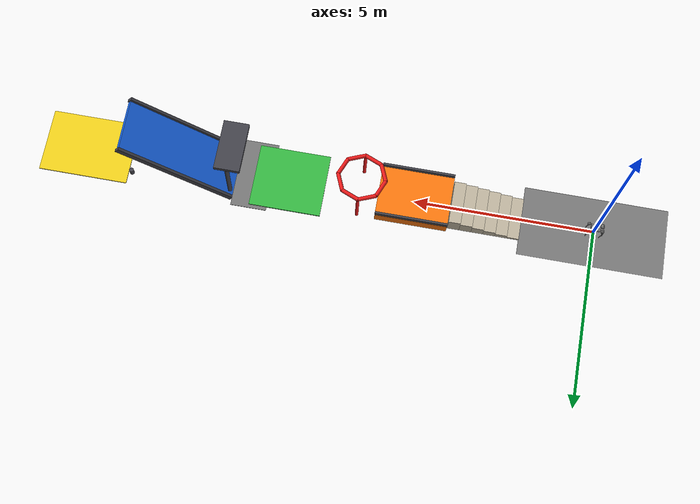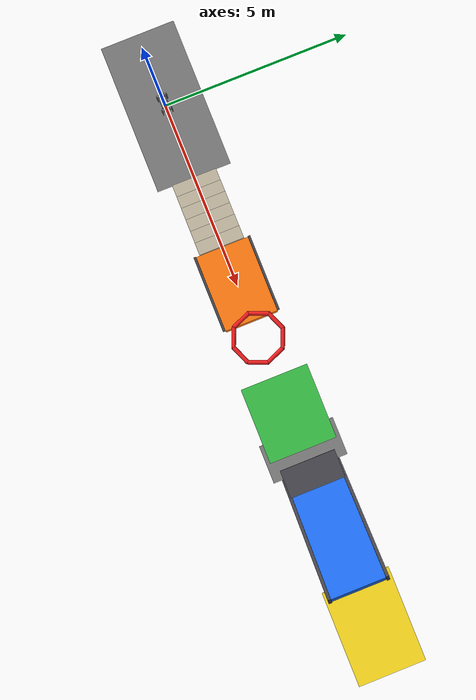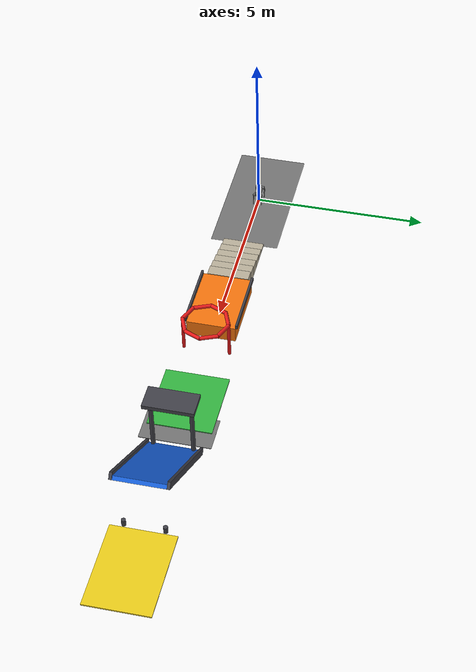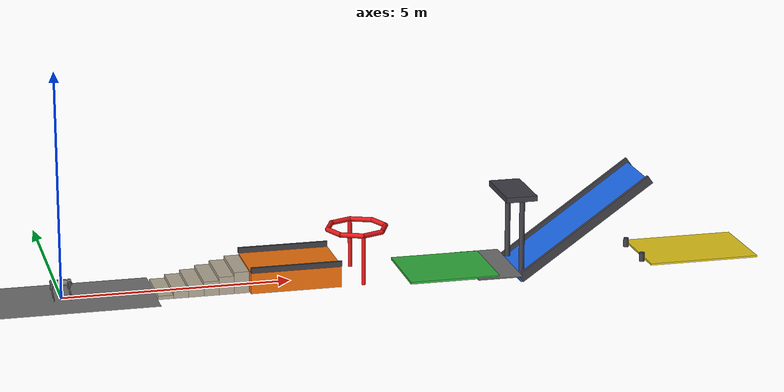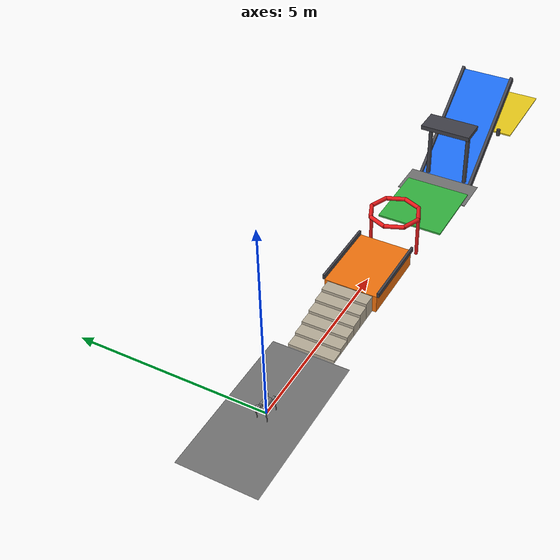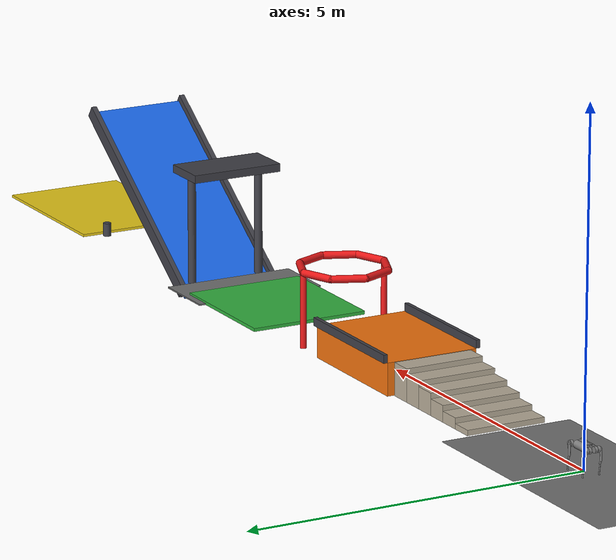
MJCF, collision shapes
<?xml version="1.0" encoding="utf-8"?>
<mujoco model="go1_obstacle_course">
  <compiler angle="radian" meshdir="go1" autolimits="true"/>
  <option timestep="0.002" gravity="0 0 -9.81" iterations="50" solver="Newton"
          cone="elliptic" impratio="10"/>

  <visual>
    <headlight ambient="0.5 0.5 0.5" diffuse="0.8 0.8 0.8" specular="0.1 0.1 0.1"/>
    <map force="0.1" zfar="200"/>
    <quality shadowsize="4096"/>
    <global offwidth="1280" offheight="720"/>
  </visual>

  <asset>
    <texture type="skybox" builtin="gradient" rgb1="0.3 0.5 0.8" rgb2="0.02 0.02 0.15"
             width="200" height="200"/>

    <!-- Floor checker -->
    <texture name="floor_tex" type="2d" builtin="checker"
             rgb1="0.55 0.55 0.55" rgb2="0.35 0.35 0.35" width="512" height="512"/>
    <material name="floor_mat" texture="floor_tex" texrepeat="6 6"
              specular="0.4" shininess="0.3" reflectance="0.05"/>

    <!-- Stair / concrete material -->
    <texture name="stair_tex" type="2d" builtin="flat"
             rgb1="0.72 0.68 0.60" width="64" height="64"/>
    <material name="stair_mat" texture="stair_tex" specular="0.3" shininess="0.2"/>

    <!-- Ring platform material (orange) -->
    <texture name="ring_tex" type="2d" builtin="flat"
             rgb1="0.95 0.45 0.05" width="64" height="64"/>
    <material name="ring_mat" texture="ring_tex" specular="0.6" shininess="0.5"/>

    <!-- Jump-through hoop material (vivid red) -->
    <texture name="hoop_tex" type="2d" builtin="flat"
             rgb1="0.90 0.10 0.10" width="64" height="64"/>
    <material name="hoop_mat" texture="hoop_tex" specular="0.8" shininess="0.7"/>

    <!-- Landing pad (green) -->
    <texture name="land_tex" type="2d" builtin="flat"
             rgb1="0.20 0.70 0.25" width="64" height="64"/>
    <material name="land_mat" texture="land_tex" specular="0.2" shininess="0.1"/>

    <!-- Slide surface — vivid blue, very slippery -->
    <texture name="slide_tex" type="2d" builtin="flat"
             rgb1="0.10 0.40 0.90" width="64" height="64"/>
    <material name="slide_mat" texture="slide_tex" specular="0.9" shininess="0.9"
              reflectance="0.3"/>

    <!-- Slide support / side-rail material (dark grey) -->
    <texture name="support_tex" type="2d" builtin="flat"
             rgb1="0.25 0.25 0.28" width="64" height="64"/>
    <material name="support_mat" texture="support_tex" specular="0.4" shininess="0.3"/>

    <!-- Run-out pad (yellow) -->
    <texture name="runout_tex" type="2d" builtin="flat"
             rgb1="0.92 0.80 0.10" width="64" height="64"/>
    <material name="runout_mat" texture="runout_tex" specular="0.2" shininess="0.1"/>

    <!-- Robot meshes -->
    <mesh file="trunk.stl"/>
    <mesh file="hip.stl"/>
    <mesh file="thigh_mirror.stl"/>
    <mesh file="calf.stl"/>
    <mesh file="thigh.stl"/>
  </asset>

  <default>
    <default class="go1">
      <geom friction="1.0 0.01 0.005" margin="0.001" condim="3"/>
      <joint axis="0 1 0" damping="2" armature="0.01" frictionloss="0.2"/>
      <default class="abduction">
        <joint axis="1 0 0" damping="1" range="-0.863 0.863"/>
      </default>
      <default class="hip">
        <joint range="-0.686 4.501"/>
      </default>
      <default class="knee">
        <joint range="-2.818 -0.888"/>
      </default>
      <default class="visual">
        <geom type="mesh" contype="0" conaffinity="0" group="2"/>
      </default>
      <default class="collision">
        <geom group="3" type="capsule"/>
        <default class="hip_left1">
          <geom size="0.046 0.02" pos="0 0.045 0" quat="1 1 0 0" type="cylinder"/>
        </default>
        <default class="hip_left2">
          <geom size="0.031 0.02" pos="0 0.065 0" quat="1 1 0 0" type="cylinder"/>
        </default>
        <default class="hip_left3">
          <geom size="0.046 0.02" quat="1 1 0 0" type="cylinder"/>
        </default>
        <default class="hip_right1">
          <geom size="0.046 0.02" pos="0 -0.045 0" quat="1 1 0 0" type="cylinder"/>
        </default>
        <default class="hip_right2">
          <geom size="0.031 0.02" pos="0 -0.065 0" quat="1 1 0 0" type="cylinder"/>
        </default>
        <default class="hip_right3">
          <geom size="0.046 0.02" quat="1 1 0 0" type="cylinder"/>
        </default>
        <default class="thigh1">
          <geom size="0.015" fromto="-0.02 0 0 -0.02 0 -0.16"/>
        </default>
        <default class="thigh2">
          <geom size="0.015" fromto="0 0 0 -0.02 0 -0.1"/>
        </default>
        <default class="thigh3">
          <geom size="0.015" fromto="-0.02 0 -0.16 0 0 -0.2"/>
        </default>
        <default class="calf1">
          <geom size="0.01" fromto="0 0 0 0.02 0 -0.13"/>
        </default>
        <default class="calf2">
          <geom size="0.01" fromto="0.02 0 -0.13 0 0 -0.2"/>
        </default>
        <default class="foot">
          <geom type="sphere" size="0.023" pos="0 0 -0.213" priority="1"
                solimp="0.015 1 0.023" condim="6" friction="1.0 0.02 0.01"/>
        </default>
      </default>
    </default>
    <motor ctrllimited="true" ctrlrange="-33.5 33.5"/>
  </default>

  <worldbody>
    <!-- ── Lighting ── -->
    <light name="sun"    pos="5 0 10" dir="0 0 -1" directional="true"
           diffuse="0.9 0.9 0.9" specular="0.3 0.3 0.3" castshadow="true"/>
    <light name="fill1"  pos="5 -4 5"  dir="-0.5 0.5 -1" diffuse="0.3 0.3 0.4"/>
    <light name="fill2"  pos="5  4 5"  dir="-0.5 -0.5 -1" diffuse="0.25 0.25 0.35"/>
    <!-- Hoop accent light -->
    <light name="hoop_l" pos="6.5 0 3" dir="0 0 -1" diffuse="0.8 0.2 0.2"
           attenuation="0 0 0.5"/>
    <!-- Slide accent light -->
    <light name="slide_l" pos="11.5 0 5" dir="0 0 -1" diffuse="0.2 0.4 0.9"
           attenuation="0 0 0.3"/>
    <light name="spot"  mode="targetbodycom" target="trunk" pos="0 -2 3"
           diffuse="0.6 0.6 0.6" specular="0.2 0.2 0.2"/>

    <!-- ══ ZONE 1: Flat ground (x: -2 → 2) ══ -->
    <geom name="ground" type="plane" size="2 1 0.1" pos="0 0 0"
          material="floor_mat" condim="3" friction="1.0 0.01 0.005"/>

    <!-- ══ ZONE 2: Staircase (x: 2 → 4, 6 steps, 8cm rise, 33cm run) ══ -->
    <!-- Step 1: z=0.08 -->
    <geom name="step1" type="box" size="0.165 0.6 0.04"  pos="2.165 0 0.04"
          material="stair_mat" condim="3" friction="1.0 0.01 0.005"/>
    <!-- Step 2: z=0.16 -->
    <geom name="step2" type="box" size="0.165 0.6 0.08"  pos="2.495 0 0.08"
          material="stair_mat" condim="3" friction="1.0 0.01 0.005"/>
    <!-- Step 3: z=0.24 -->
    <geom name="step3" type="box" size="0.165 0.6 0.12"  pos="2.825 0 0.12"
          material="stair_mat" condim="3" friction="1.0 0.01 0.005"/>
    <!-- Step 4: z=0.32 -->
    <geom name="step4" type="box" size="0.165 0.6 0.16"  pos="3.155 0 0.16"
          material="stair_mat" condim="3" friction="1.0 0.01 0.005"/>
    <!-- Step 5: z=0.40 -->
    <geom name="step5" type="box" size="0.165 0.6 0.20"  pos="3.485 0 0.20"
          material="stair_mat" condim="3" friction="1.0 0.01 0.005"/>
    <!-- Step 6 / top platform connecting to ring (z=0.48) -->
    <geom name="step6" type="box" size="0.165 0.6 0.24"  pos="3.815 0 0.24"
          material="stair_mat" condim="3" friction="1.0 0.01 0.005"/>

    <!-- ══ ZONE 3: Raised Platform (x: 4 → 6, top at z=0.48) ══ -->
    <geom name="ring_platform" type="box" size="1.0 0.7 0.24" pos="5.0 0 0.24"
          material="ring_mat" condim="3" friction="0.9 0.01 0.005"/>
    <!-- Low guard walls (visual only) -->
    <geom name="plat_rail_l" type="box" size="1.0 0.03 0.06" pos="5.0  0.73 0.54"
          material="support_mat" contype="0" conaffinity="0"/>
    <geom name="plat_rail_r" type="box" size="1.0 0.03 0.06" pos="5.0 -0.73 0.54"
          material="support_mat" contype="0" conaffinity="0"/>

    <!-- Left post -->
    <geom name="hoop_post_l" type="cylinder" size="0.045 0.55"
          pos="6.5  0.65 0.55" material="hoop_mat"
          condim="3" friction="0.8 0.01 0.005"/>
    <!-- Right post -->
    <geom name="hoop_post_r" type="cylinder" size="0.045 0.55"
          pos="6.5 -0.65 0.55" material="hoop_mat"
          condim="3" friction="0.8 0.01 0.005"/>
    <!-- Seg 0: 0°→45° -->
    <geom name="hoop_s0" type="capsule" size="0.055"
          fromto="7.15  0.00 1.10   6.96  0.46 1.10"
          material="hoop_mat" contype="0" conaffinity="0"/>
    <!-- Seg 1: 45°→90° -->
    <geom name="hoop_s1" type="capsule" size="0.055"
          fromto="6.96  0.46 1.10   6.50  0.65 1.10"
          material="hoop_mat" contype="0" conaffinity="0"/>
    <!-- Seg 2: 90°→135° -->
    <geom name="hoop_s2" type="capsule" size="0.055"
          fromto="6.50  0.65 1.10   6.04  0.46 1.10"
          material="hoop_mat" contype="0" conaffinity="0"/>
    <!-- Seg 3: 135°→180° -->
    <geom name="hoop_s3" type="capsule" size="0.055"
          fromto="6.04  0.46 1.10   5.85  0.00 1.10"
          material="hoop_mat" contype="0" conaffinity="0"/>
    <!-- Seg 4: 180°→225° -->
    <geom name="hoop_s4" type="capsule" size="0.055"
          fromto="5.85  0.00 1.10   6.04 -0.46 1.10"
          material="hoop_mat" contype="0" conaffinity="0"/>
    <!-- Seg 5: 225°→270° -->
    <geom name="hoop_s5" type="capsule" size="0.055"
          fromto="6.04 -0.46 1.10   6.50 -0.65 1.10"
          material="hoop_mat" contype="0" conaffinity="0"/>
    <!-- Seg 6: 270°→315° -->
    <geom name="hoop_s6" type="capsule" size="0.055"
          fromto="6.50 -0.65 1.10   6.96 -0.46 1.10"
          material="hoop_mat" contype="0" conaffinity="0"/>
    <!-- Seg 7: 315°→360° -->
    <geom name="hoop_s7" type="capsule" size="0.055"
          fromto="6.96 -0.46 1.10   7.15  0.00 1.10"
          material="hoop_mat" contype="0" conaffinity="0"/>

    <!-- ══ ZONE 5: Landing Pad (x: 7.5 → 9.5, z=0) ══ -->
    <geom name="landing_pad" type="box" size="1.0 0.9 0.025" pos="8.5 0 0.025"
          material="land_mat" condim="3" friction="1.2 0.01 0.005"/>
    <!-- Connecting flat ground between hoop and slide -->
    <geom name="mid_ground" type="box" size="0.5 1.0 0.01" pos="9.5 0 0.01"
          material="floor_mat" condim="3" friction="1.0 0.01 0.005"/>

    <!-- Ramp surface -->
    <geom name="slide_ramp" type="box" size="1.80 0.70 0.06"
          pos="11.50 0 0.86"
          euler="0 -0.6109 0"
          material="slide_mat"
          condim="3" friction="0.05 0.002 0.001"/>
    <!-- Left guard rail on slide -->
    <geom name="slide_rail_l" type="box" size="1.80 0.04 0.10"
          pos="11.50  0.74 0.92"
          euler="0 -0.6109 0"
          material="support_mat" contype="0" conaffinity="0"/>
    <!-- Right guard rail on slide -->
    <geom name="slide_rail_r" type="box" size="1.80 0.04 0.10"
          pos="11.50 -0.74 0.92"
          euler="0 -0.6109 0"
          material="support_mat" contype="0" conaffinity="0"/>
    <!-- Support leg left (front) -->
    <geom name="slide_leg_lf" type="cylinder" size="0.06 0.86"
          pos="10.10  0.55 0.86" material="support_mat"
          condim="3" friction="0.8 0.01 0.005"/>
    <!-- Support leg right (front) -->
    <geom name="slide_leg_rf" type="cylinder" size="0.06 0.86"
          pos="10.10 -0.55 0.86" material="support_mat"
          condim="3" friction="0.8 0.01 0.005"/>
    <!-- Support leg left (back) -->
    <geom name="slide_leg_lb" type="cylinder" size="0.06 0.10"
          pos="12.90  0.55 0.10" material="support_mat"
          condim="3" friction="0.8 0.01 0.005"/>
    <!-- Support leg right (back) -->
    <geom name="slide_leg_rb" type="cylinder" size="0.06 0.10"
          pos="12.90 -0.55 0.10" material="support_mat"
          condim="3" friction="0.8 0.01 0.005"/>
    <!-- Slide entry platform at the top -->
    <geom name="slide_top_plat" type="box" size="0.35 0.70 0.06"
          pos="10.05 0 1.68" material="support_mat"
          condim="3" friction="0.9 0.01 0.005"/>

    <!-- ══ ZONE 7: Run-out zone after slide (x: 13 → 15.5) ══ -->
    <geom name="runout_pad" type="box" size="1.25 0.90 0.02" pos="14.25 0 0.02"
          material="runout_mat" condim="3" friction="1.0 0.01 0.005"/>

    <!-- ══ ROBOT ══ -->
    <body name="trunk" pos="0 0 0.35" childclass="go1">
      <!-- Cameras -->
      <camera name="tracking"  mode="trackcom"  pos="0 -2.0 1.2" xyaxes="1 0 0 0 0.5 1"/>
      <camera name="side_view" mode="trackcom"  pos="-3 -3 2"    xyaxes="0.7 0.7 0 -0.3 0.3 1"/>
      <camera name="top_view"  mode="trackcom"  pos="0 0 5"      xyaxes="1 0 0 0 1 0"/>
      <camera name="front_cam" mode="trackcom"  pos="0 -1.5 0.6" xyaxes="1 0 0 0 0.2 1"/>

      <site name="imu_site" pos="0 0 0" size="0.01"/>
      <site name="head"     pos="0.3 0 0" rgba="1 0 0 1" size="0.02" group="5"/>

      <inertial pos="0.0223 0.002 -0.0005"
                quat="-0.00342088 0.705204 0.000106698 0.708996"
                mass="5.204" diaginertia="0.0716565 0.0630105 0.0168101"/>
      <freejoint name="root"/>
      <geom class="visual" mesh="trunk"/>
      <geom class="collision" size="0.125 0.04 0.057" type="box"/>
      <geom class="collision" quat="1 0 1 0" pos="0 -0.04 0" size="0.058 0.125" type="cylinder"/>
      <geom class="collision" quat="1 0 1 0" pos="0  0.04 0" size="0.058 0.125" type="cylinder"/>

      <!-- FR leg -->
      <body name="FR_hip" pos="0.1881 -0.04675 0">
        <inertial pos="-0.0049166 0.00762615 -8.865e-05"
                  quat="0.507341 0.514169 0.495027 0.482891" mass="0.68"
                  diaginertia="0.000734064 0.000468438 0.000398719"/>
        <joint class="abduction" name="FR_hip_joint"/>
        <geom class="visual" mesh="hip" quat="1 0 0 0"/>
        <geom class="hip_right1"/>
        <geom class="hip_right2"/>
        <body name="FR_thigh" pos="0 -0.08 0">
          <inertial pos="-0.00304722 0.019315 -0.0305004"
                    quat="0.65243 -0.0272313 0.0775126 0.753383" mass="1.009"
                    diaginertia="0.00478717 0.00460903 0.000709268"/>
          <joint class="hip" name="FR_thigh_joint"/>
          <geom class="visual" mesh="thigh_mirror"/>
          <geom class="thigh1"/>
          <geom class="thigh2"/>
          <geom class="thigh3"/>
          <body name="FR_calf" pos="0 0 -0.213">
            <inertial pos="0.00429862 0.000976676 -0.146197"
                      quat="0.691246 0.00357467 0.00511118 0.722592"
                      mass="0.195862" diaginertia="0.00149767 0.00148468 3.58427e-05"/>
            <joint class="knee" name="FR_calf_joint"/>
            <geom class="visual" mesh="calf"/>
            <geom class="calf1"/>
            <geom class="calf2"/>
            <geom name="FR" class="foot"/>
            <site name="FR_foot_site" pos="0 0 -0.213" type="sphere" size="0.023" group="5"/>
          </body>
        </body>
      </body>

      <!-- FL leg -->
      <body name="FL_hip" pos="0.1881 0.04675 0">
        <inertial pos="-0.0049166 -0.00762615 -8.865e-05"
                  quat="0.482891 0.495027 0.514169 0.507341" mass="0.68"
                  diaginertia="0.000734064 0.000468438 0.000398719"/>
        <joint class="abduction" name="FL_hip_joint"/>
        <geom class="visual" mesh="hip"/>
        <geom class="hip_left1"/>
        <geom class="hip_left2"/>
        <body name="FL_thigh" pos="0 0.08 0">
          <inertial pos="-0.00304722 -0.019315 -0.0305004"
                    quat="0.753383 0.0775126 -0.0272313 0.65243" mass="1.009"
                    diaginertia="0.00478717 0.00460903 0.000709268"/>
          <joint class="hip" name="FL_thigh_joint"/>
          <geom class="visual" mesh="thigh"/>
          <geom class="thigh1"/>
          <geom class="thigh2"/>
          <geom class="thigh3"/>
          <body name="FL_calf" pos="0 0 -0.213">
            <inertial pos="0.00429862 0.000976676 -0.146197"
                      quat="0.691246 0.00357467 0.00511118 0.722592"
                      mass="0.195862" diaginertia="0.00149767 0.00148468 3.58427e-05"/>
            <joint class="knee" name="FL_calf_joint"/>
            <geom class="visual" mesh="calf"/>
            <geom class="calf1"/>
            <geom class="calf2"/>
            <geom name="FL" class="foot"/>
            <site name="FL_foot_site" pos="0 0 -0.213" type="sphere" size="0.023" group="5"/>
          </body>
        </body>
      </body>

      <!-- RR leg -->
      <body name="RR_hip" pos="-0.1881 -0.04675 0">
        <inertial pos="0.0049166 0.00762615 -8.865e-05"
                  quat="0.495027 0.482891 0.507341 0.514169" mass="0.68"
                  diaginertia="0.000734064 0.000468438 0.000398719"/>
        <joint class="abduction" name="RR_hip_joint"/>
        <geom class="visual" quat="0 0 0 -1" mesh="hip"/>
        <geom class="hip_right1"/>
        <geom class="hip_right2"/>
        <geom class="hip_right3"/>
        <body name="RR_thigh" pos="0 -0.08 0">
          <inertial pos="-0.00304722 0.019315 -0.0305004"
                    quat="0.65243 -0.0272313 0.0775126 0.753383" mass="1.009"
                    diaginertia="0.00478717 0.00460903 0.000709268"/>
          <joint class="hip" name="RR_thigh_joint"/>
          <geom class="visual" mesh="thigh_mirror"/>
          <geom class="thigh1"/>
          <geom class="thigh2"/>
          <geom class="thigh3"/>
          <body name="RR_calf" pos="0 0 -0.213">
            <inertial pos="0.00429862 0.000976676 -0.146197"
                      quat="0.691246 0.00357467 0.00511118 0.722592"
                      mass="0.195862" diaginertia="0.00149767 0.00148468 3.58427e-05"/>
            <joint class="knee" name="RR_calf_joint"/>
            <geom class="visual" mesh="calf"/>
            <geom class="calf1"/>
            <geom class="calf2"/>
            <geom name="RR" class="foot"/>
            <site name="RR_foot_site" pos="0 0 -0.213" type="sphere" size="0.023" group="5"/>
          </body>
        </body>
      </body>

      <!-- RL leg -->
      <body name="RL_hip" pos="-0.1881 0.04675 0">
        <inertial pos="0.0049166 -0.00762615 -8.865e-05"
                  quat="0.514169 0.507341 0.482891 0.495027" mass="0.68"
                  diaginertia="0.000734064 0.000468438 0.000398719"/>
        <joint class="abduction" name="RL_hip_joint"/>
        <geom class="visual" quat="0 0 1 0" mesh="hip"/>
        <geom class="hip_left1"/>
        <geom class="hip_left2"/>
        <geom class="hip_left3"/>
        <body name="RL_thigh" pos="0 0.08 0">
          <inertial pos="-0.00304722 -0.019315 -0.0305004"
                    quat="0.753383 0.0775126 -0.0272313 0.65243" mass="1.009"
                    diaginertia="0.00478717 0.00460903 0.000709268"/>
          <joint class="hip" name="RL_thigh_joint"/>
          <geom class="visual" mesh="thigh"/>
          <geom class="thigh1"/>
          <geom class="thigh2"/>
          <geom class="thigh3"/>
          <body name="RL_calf" pos="0 0 -0.213">
            <inertial pos="0.00429862 0.000976676 -0.146197"
                      quat="0.691246 0.00357467 0.00511118 0.722592"
                      mass="0.195862" diaginertia="0.00149767 0.00148468 3.58427e-05"/>
            <joint class="knee" name="RL_calf_joint"/>
            <geom class="visual" mesh="calf"/>
            <geom class="calf1"/>
            <geom class="calf2"/>
            <geom name="RL" class="foot"/>
            <site name="RL_foot_site" pos="0 0 -0.213" type="sphere" size="0.023" group="5"/>
          </body>
        </body>
      </body>
    </body>
  </worldbody>

  <actuator>
    <motor name="FR_hip_motor"   joint="FR_hip_joint"   gear="1"/>
    <motor name="FR_thigh_motor" joint="FR_thigh_joint" gear="1"/>
    <motor name="FR_calf_motor"  joint="FR_calf_joint"  gear="1"/>
    <motor name="FL_hip_motor"   joint="FL_hip_joint"   gear="1"/>
    <motor name="FL_thigh_motor" joint="FL_thigh_joint" gear="1"/>
    <motor name="FL_calf_motor"  joint="FL_calf_joint"  gear="1"/>
    <motor name="RR_hip_motor"   joint="RR_hip_joint"   gear="1"/>
    <motor name="RR_thigh_motor" joint="RR_thigh_joint" gear="1"/>
    <motor name="RR_calf_motor"  joint="RR_calf_joint"  gear="1"/>
    <motor name="RL_hip_motor"   joint="RL_hip_joint"   gear="1"/>
    <motor name="RL_thigh_motor" joint="RL_thigh_joint" gear="1"/>
    <motor name="RL_calf_motor"  joint="RL_calf_joint"  gear="1"/>
  </actuator>

  <sensor>
    <framelinvel name="base_linvel" objtype="site" objname="imu_site"/>
    <frameangvel name="base_angvel" objtype="site" objname="imu_site"/>
    <framequat    name="base_quat"  objtype="site" objname="imu_site"/>
    <accelerometer name="base_accel" site="imu_site"/>
    <gyro          name="base_gyro"  site="imu_site"/>
  </sensor>

  <keyframe>
    <key name="home"
         qpos="0 0 0.35 1 0 0 0  0 0.9 -1.8  0 0.9 -1.8  0 0.9 -1.8  0 0.9 -1.8"
         ctrl="0 0 0 0 0 0 0 0 0 0 0 0"/>
  </keyframe>
</mujoco>
